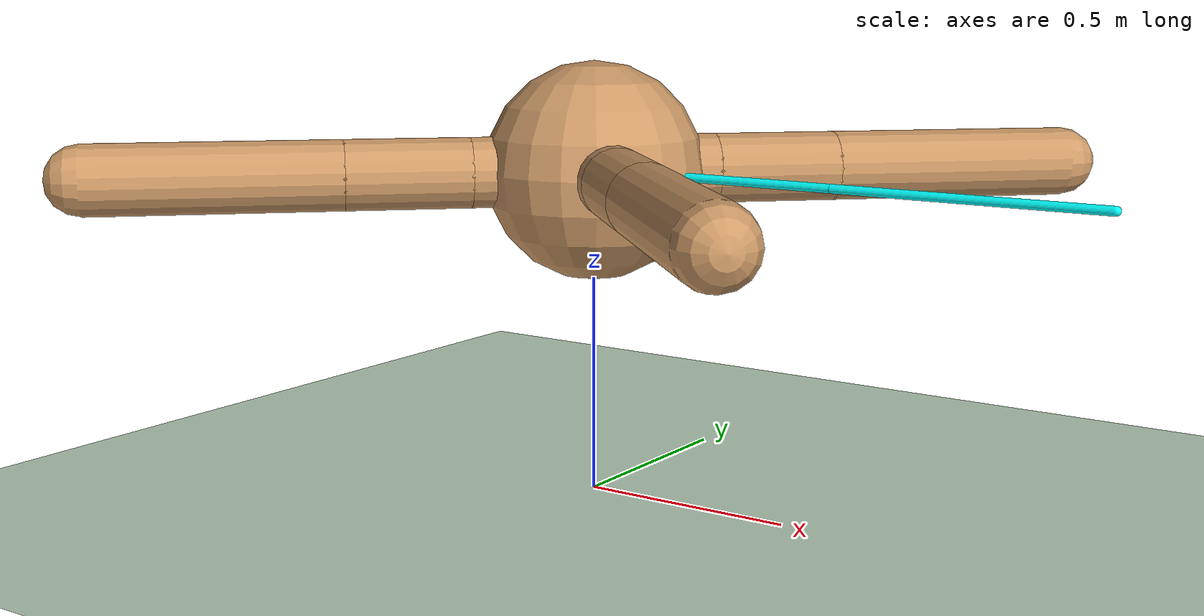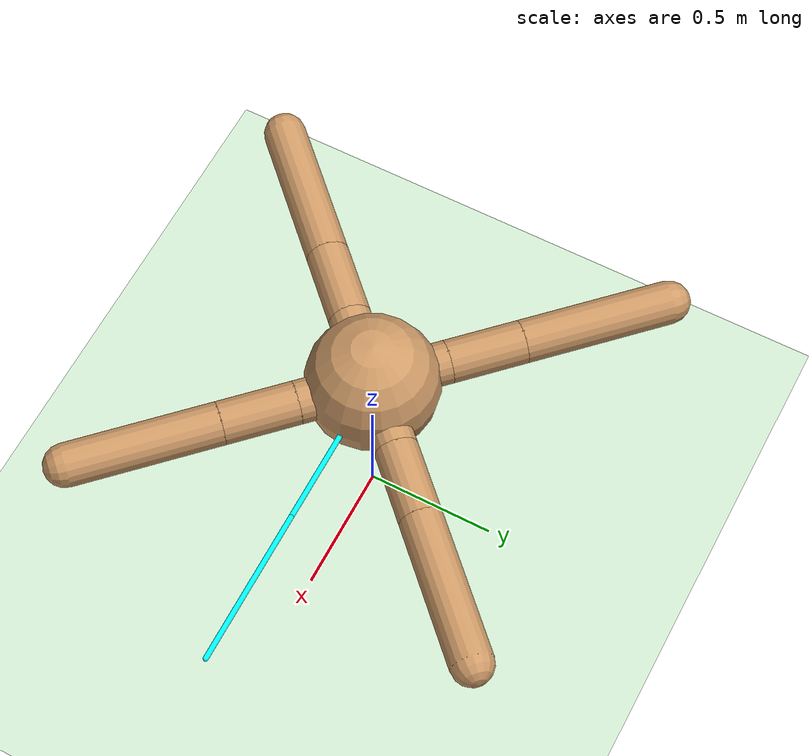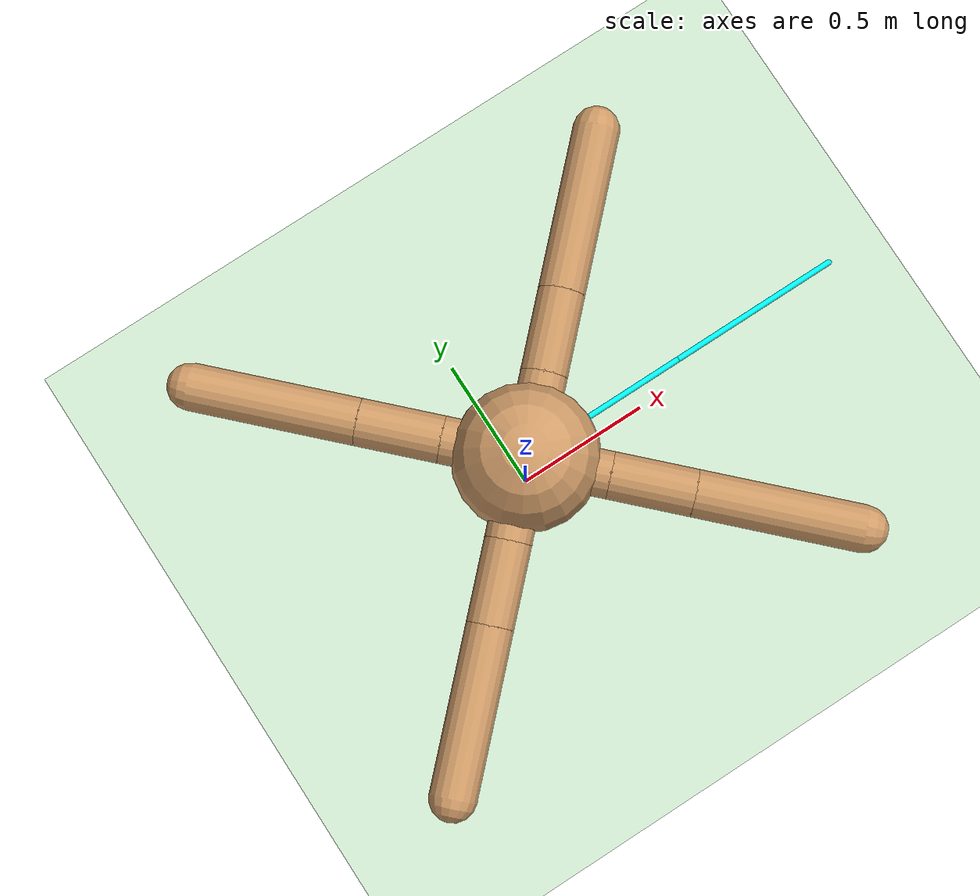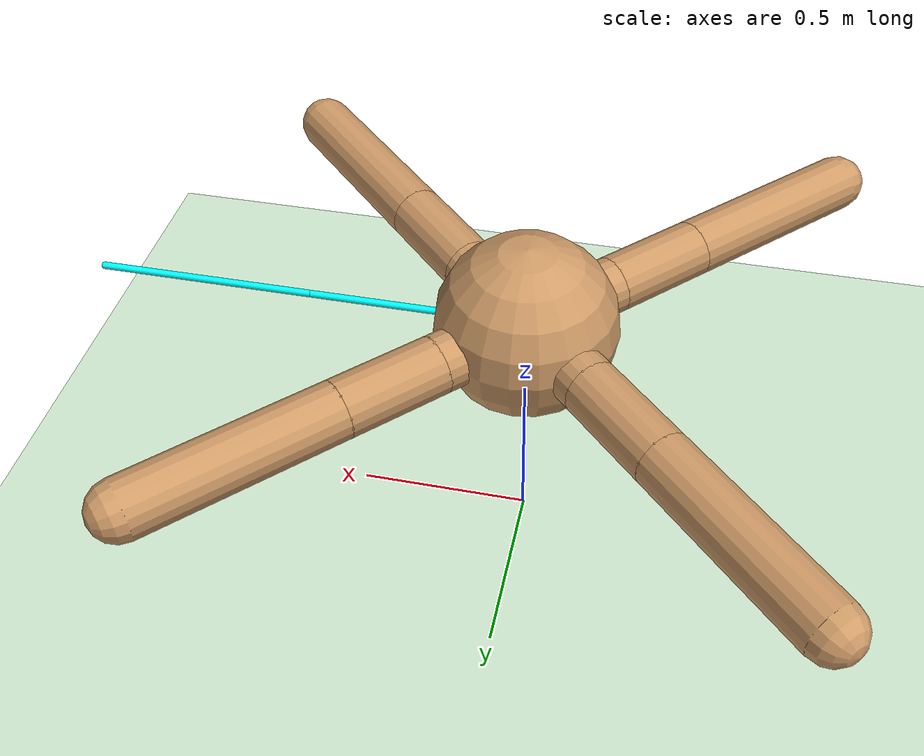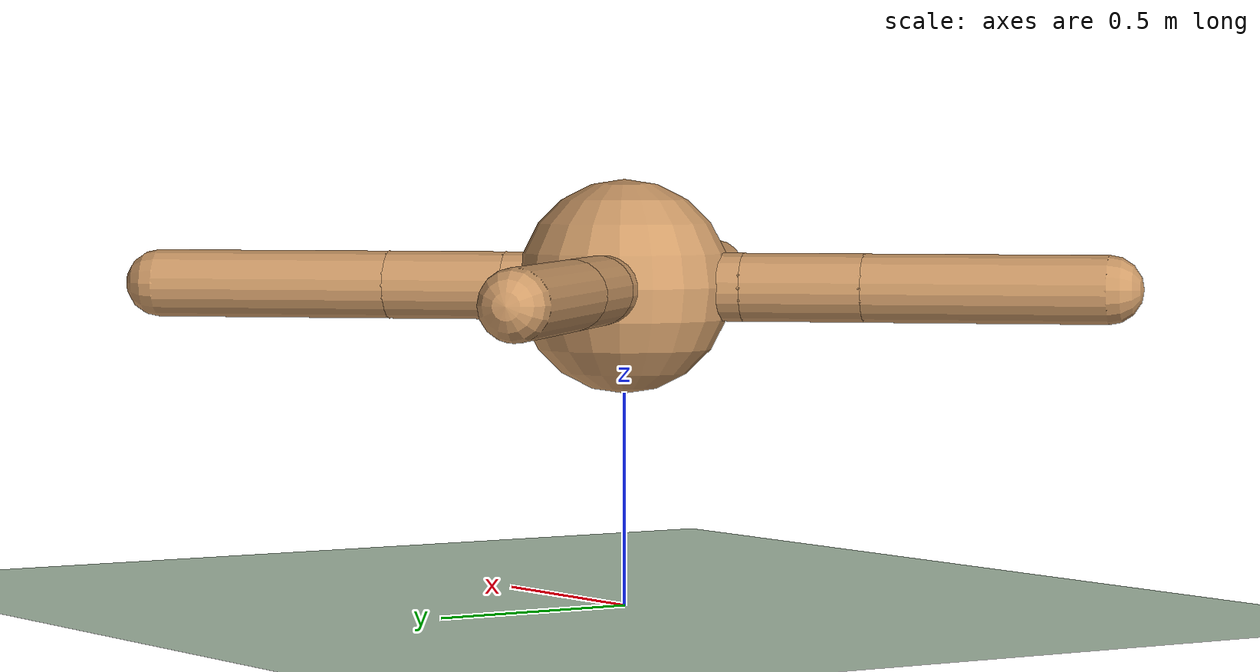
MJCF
<mujoco model="ant">
  <compiler angle="radian" coordinate="local" inertiafromgeom="true"/>
  <option integrator="RK4" timestep="0.01"/>
    <size nconmax="500"/>
  <custom>
    <numeric data="0.0 0.0 0.55 1.0 0.0 0.0 0.0 0.0 1.0 0.0 -1.0 0.0 -1.0 0.0 1.0" name="init_qpos"/>
  </custom>
  <default>
    <joint armature="1" damping="1" limited="true"/>
    <geom conaffinity="0" condim="3" density="5.0" friction="1 0.5 0.5" margin="0.01" rgba="0.8 0.6 0.4 1"/>
  </default>
  <asset>
    <texture builtin="gradient" height="100" rgb1="1 1 1" rgb2="0 0 0" type="skybox" width="100"/>
    <texture builtin="flat" height="1278" mark="cross" markrgb="1 1 1" name="texgeom" random="0.01" rgb1="0.8 0.6 0.4" rgb2="0.8 0.6 0.4" type="cube" width="127"/>
    <texture builtin="checker" height="100" name="texplane" rgb1="0 0 0" rgb2="0.8 0.8 0.8" type="2d" width="100"/>
    <material name="MatPlane" reflectance="0.2" shininess="1" specular="1" texrepeat="0 0" texture="texplane"/>
    <material name="geom" texture="texgeom" texuniform="true"/>
  </asset>

  <worldbody>
    <light cutoff="100" diffuse="1 1 1" dir="-0 0 -1.3" directional="true" exponent="1" pos="0 0 1.3" specular=".1 .1 .1"/>
    <geom conaffinity="1" condim="3" material="MatPlane" name="floor" pos="0 0 0" rgba="0.8 0.9 0.8 1" size="10 10 1" type="plane"/>

    <body name="torso" pos="0 0 0.75">
      <camera name="track" mode="trackcom" pos="0 -3 0.3" xyaxes="1 0 0 0 0 1"/>
      <geom name="torso_geom" pos="0 0 0" size="0.25" mass="0.1" type="sphere"/>
      <joint armature="0" damping="0" limited="false" margin="0.01" name="root" pos="0 0 0" type="free"/>

      <body name="front_left_leg" pos="0 0 0">
        <geom fromto="0.0 0.0 0.0 0.2 0.2 0.0" name="aux_1_geom" size="0.08" type="capsule"/>
        <body name="aux_1" pos="0.2 0.2 0">
          <joint axis="0 0 1" name="hip_1" pos="0.0 0.0 0.0" range="-0.7 0.7" type="hinge"/>
          <geom fromto="0.0 0.0 0.0 0.2 0.2 0.0" name="left_leg_geom" size="0.08" type="capsule"/>
          <body pos="0.2 0.2 0">
            <joint axis="-1 1 0" name="ankle_1" pos="0.0 0.0 0.0" range="0.8 1.4" type="hinge"/>
            <geom fromto="0.0 0.0 0.0 0.4 0.4 0.0" name="left_ankle_geom" size="0.08" type="capsule"/>
          </body>
        </body>
      </body>

      <body name="front_right_leg" pos="0 0 0">
        <geom fromto="0.0 0.0 0.0 -0.2 0.2 0.0" name="aux_2_geom" size="0.08" type="capsule"/>
        <body name="aux_2" pos="-0.2 0.2 0">
          <joint axis="0 0 1" name="hip_2" pos="0.0 0.0 0.0" range="-0.7 0.7" type="hinge"/>
          <geom fromto="0.0 0.0 0.0 -0.2 0.2 0.0" name="right_leg_geom" size="0.08" type="capsule"/>
          <body pos="-0.2 0.2 0">
            <joint axis="1 1 0" name="ankle_2" pos="0.0 0.0 0.0" range="-1.4 -0.8" type="hinge"/>
            <geom fromto="0.0 0.0 0.0 -0.4 0.4 0.0" name="right_ankle_geom" size="0.08" type="capsule"/>
          </body>
        </body>
      </body>

      <body name="back_leg" pos="0 0 0">
        <geom fromto="0.0 0.0 0.0 -0.2 -0.2 0.0" name="aux_3_geom" size="0.08" type="capsule"/>
        <body name="aux_3" pos="-0.2 -0.2 0">
          <joint axis="0 0 1" name="hip_3" pos="0.0 0.0 0.0" range="-0.7 0.7" type="hinge"/>
          <geom fromto="0.0 0.0 0.0 -0.2 -0.2 0.0" name="back_leg_geom" size="0.08" type="capsule"/>
          <body pos="-0.2 -0.2 0">
            <joint axis="-1 1 0" name="ankle_3" pos="0.0 0.0 0.0" range="-1.4 -0.8" type="hinge"/>
            <geom fromto="0.0 0.0 0.0 -0.4 -0.4 0.0" name="third_ankle_geom" size="0.08" type="capsule"/>
          </body>
        </body>
      </body>

      <body name="right_back_leg" pos="0 0 0">
        <geom fromto="0.0 0.0 0.0 0.2 -0.2 0.0" name="aux_4_geom" size="0.08" type="capsule"/>
        <body name="aux_4" pos="0.2 -0.2 0">
          <joint axis="0 0 1" name="hip_4" pos="0.0 0.0 0.0" range="-0.7 0.7" type="hinge"/>
          <geom fromto="0.0 0.0 0.0 0.2 -0.2 0.0" name="rightback_leg_geom" size="0.08" type="capsule"/>
          <body pos="0.2 -0.2 0">
            <joint axis="1 1 0" name="ankle_4" pos="0.0 0.0 0.0" range="0.8 1.4" type="hinge"/>
            <geom fromto="0.0 0.0 0.0 0.4 -0.4 0.0" name="fourth_ankle_geom" size="0.08" type="capsule"/>
          </body>
        </body>
      </body>

      <body name="left_feeler" pos="0 0 0">
        <joint axis="0 0 1" name="lf1" pos="0.0 0.0 0.0" range="0.08 0.3" type="hinge"/>
        <geom fromto="0.2 0.0 0.0 0.6 0.0 0.0" name="lf1_geom" size="0.01" density="1" type="capsule" rgba="0 1 1 1"/>
        <body pos="0.6 0.0 0">
          <joint axis="0 1 0" name="lf2" pos="0.0 0.0 0.0" range="-0.65 0.3" type="hinge"/>
          <geom fromto="0.0 0.0 0.0 0.6 0.0 0.0" name="lf2_geom" size="0.01" density="1" type="capsule" rgba="0 1 1 1"/>
        </body>
      </body>

      <body name="right_feeler" pos="0 0 0">
        <joint axis="0 0 1" name="rf1" pos="0.0 0.0 0.0" range="-0.3 -0.08" type="hinge"/>
        <geom fromto="0.2 0.0 0.0 0.6 0.0 0.0" name="rf1_geom" size="0.01" density="1" type="capsule" rgba="0 1 1 1"/>
        <body pos="0.6 0.0 0">
          <joint axis="0 1 0" name="rf2" pos="0.0 0.0 0.0" range="-0.65 0.3" type="hinge"/>
          <geom fromto="0.0 0.0 0.0 0.6 0.0 0.0" name="rf2_geom" size="0.01" density="1" type="capsule" rgba="0 1 1 1"/>
        </body>
      </body>

    </body>

<!-- DEFINE CUBES AND GOAL HERE -->

  </worldbody>

  <actuator>
    <position joint="hip_4" kp="20"/>
    <position joint="ankle_4" kp="20"/>
    <position joint="hip_1" kp="20"/>
    <position joint="ankle_1" kp="20"/>
    <position joint="hip_2" kp="20"/>
    <position joint="ankle_2" kp="20"/>
    <position joint="hip_3" kp="20"/>
    <position joint="ankle_3" kp="20"/>
    <motor ctrllimited="true" ctrlrange="-1.0 1.0" joint="lf1" gear="20"/>
    <motor ctrllimited="true" ctrlrange="-1.0 1.0" joint="lf2" gear="20"/>
    <motor ctrllimited="true" ctrlrange="-1.0 1.0" joint="rf1" gear="20"/>
    <motor ctrllimited="true" ctrlrange="-1.0 1.0" joint="rf2" gear="20"/>
  </actuator>
</mujoco>
